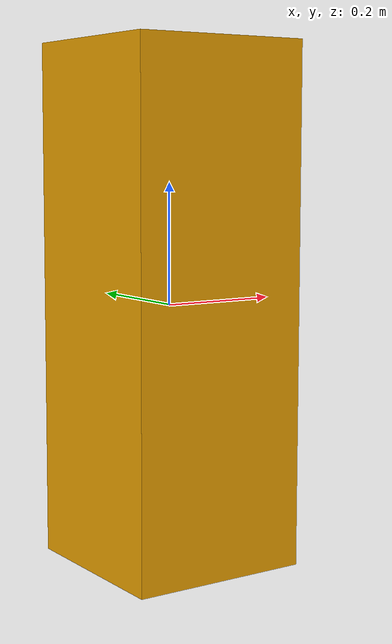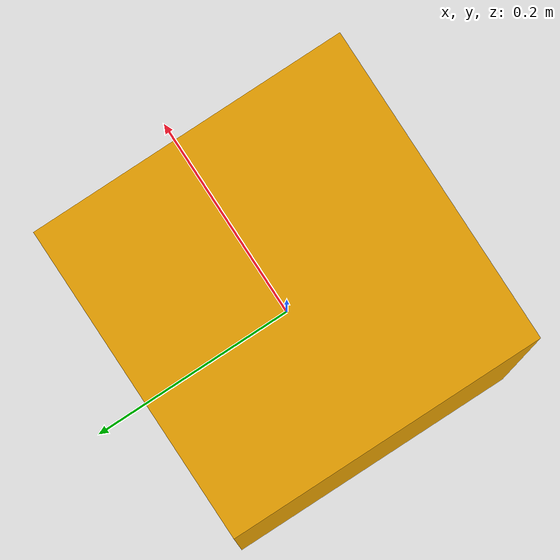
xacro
<?xml version="1.0"?>
<robot
     xmlns:xacro="http://www.ros.org/wiki/xacro" name="pedestal">
     <!-- a simple box onto which  robot can be mounted-->
    <xacro:property name="bodylen" value="0.3" />
    <xacro:property name="bodywidth" value="0.3" />
    <xacro:property name="bodyheight" value="0.85" />

    <!--this will be referred to as the "base_link", so code can be
    compatible with baxter on mobot-->
    <link name="pedestal_base_link">
        <visual>
            <geometry>
                <box size="${bodylen} ${bodywidth} ${bodyheight}"/>
            </geometry>
            <origin xyz="0 0 0" rpy="0 0 0"/>
        </visual>
        <collision>
            <geometry>
                <box size="${bodylen} ${bodywidth} ${bodyheight-0.01}"/>
            </geometry>
            <origin xyz="0 0 0" rpy="0 0 0"/>
        </collision>
     <inertial>
      <origin xyz="0 0 0" rpy="0 0 0"/>
      <mass value="1"/>
      <inertia
        ixx="1.0" ixy="0.0" ixz="0.0"
        iyy="1.0" iyz="0.0"
        izz="1.0"/>
    </inertial>
    </link>

</robot>
